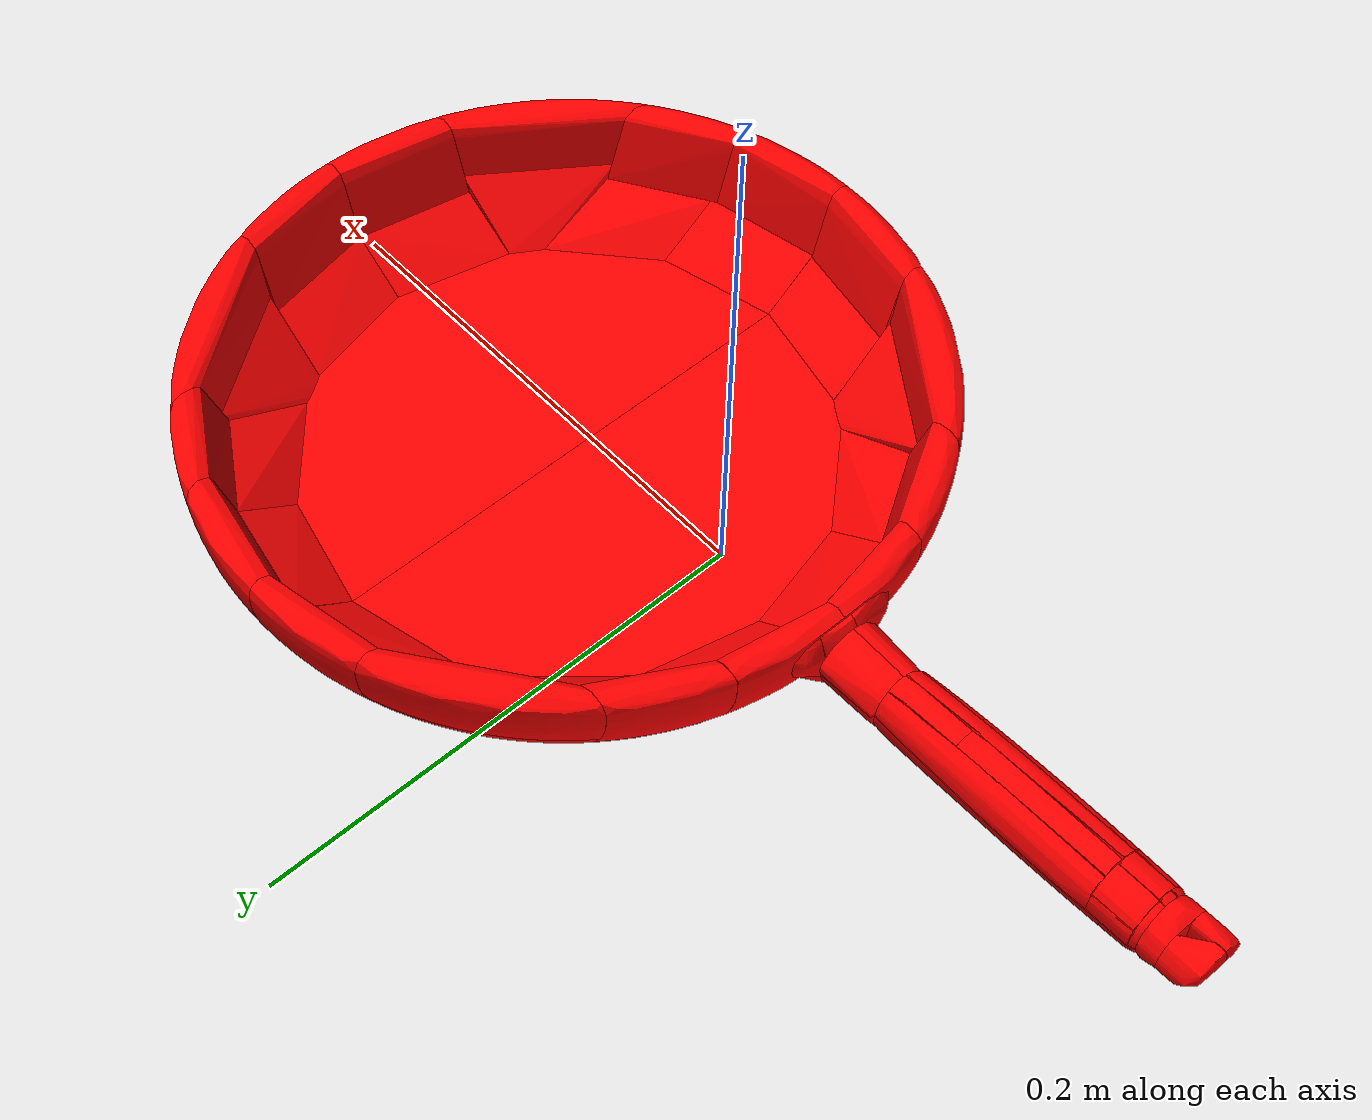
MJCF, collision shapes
<?xml version="1.0" ?>
<mujoco model="pan">
	<compiler meshdir="pan/meshes" texturedir="pan/textures" angle="radian" autolimits="true" balanceinertia="true" boundmass="0.000001" boundinertia="0.000001"/>
	<default>
		<default class="visual">
			<geom contype="0" conaffinity="0"/>
		</default>
		<default class="collision">
			<geom rgba="1.0 0.0 0.0 0.0"/>
		</default>
	</default>
	<asset>
		<mesh name="PanMetal" file="stl/PanMetal.stl" scale="1.0 1.0 1.0"/>
		<mesh name="PanMetal_001" file="stl/PanMetal_001.stl" scale="1.0 1.0 1.0"/>
		<mesh name="PanMetal_002" file="stl/PanMetal_002.stl" scale="1.0 1.0 1.0"/>
		<mesh name="PanMetal_003" file="stl/PanMetal_003.stl" scale="1.0 1.0 1.0"/>
		<mesh name="PanMetal_004" file="stl/PanMetal_004.stl" scale="1.0 1.0 1.0"/>
		<mesh name="PanMetal_005" file="stl/PanMetal_005.stl" scale="1.0 1.0 1.0"/>
		<mesh name="PanMetal_006" file="stl/PanMetal_006.stl" scale="1.0 1.0 1.0"/>
		<mesh name="PanMetal_007" file="stl/PanMetal_007.stl" scale="1.0 1.0 1.0"/>
		<mesh name="PanMetal_008" file="stl/PanMetal_008.stl" scale="1.0 1.0 1.0"/>
		<mesh name="PanMetal_009" file="stl/PanMetal_009.stl" scale="1.0 1.0 1.0"/>
		<mesh name="PanMetal_010" file="stl/PanMetal_010.stl" scale="1.0 1.0 1.0"/>
		<mesh name="PanMetal_011" file="stl/PanMetal_011.stl" scale="1.0 1.0 1.0"/>
		<mesh name="PanMetal_012" file="stl/PanMetal_012.stl" scale="1.0 1.0 1.0"/>
		<mesh name="PanMetal_013" file="stl/PanMetal_013.stl" scale="1.0 1.0 1.0"/>
		<mesh name="PanMetal_014" file="stl/PanMetal_014.stl" scale="1.0 1.0 1.0"/>
		<mesh name="PanMetal_015" file="stl/PanMetal_015.stl" scale="1.0 1.0 1.0"/>
		<mesh name="PanMetal_016" file="stl/PanMetal_016.stl" scale="1.0 1.0 1.0"/>
		<mesh name="PanMetal_017" file="stl/PanMetal_017.stl" scale="1.0 1.0 1.0"/>
		<mesh name="PanMetal_018" file="stl/PanMetal_018.stl" scale="1.0 1.0 1.0"/>
		<mesh name="PanMetal_019" file="stl/PanMetal_019.stl" scale="1.0 1.0 1.0"/>
		<mesh name="PanMetal_020" file="stl/PanMetal_020.stl" scale="1.0 1.0 1.0"/>
		<mesh name="PanMetal_021" file="stl/PanMetal_021.stl" scale="1.0 1.0 1.0"/>
		<mesh name="PanMetal_022" file="stl/PanMetal_022.stl" scale="1.0 1.0 1.0"/>
		<mesh name="PanMetal_023" file="stl/PanMetal_023.stl" scale="1.0 1.0 1.0"/>
		<mesh name="PanMetal_024" file="stl/PanMetal_024.stl" scale="1.0 1.0 1.0"/>
		<mesh name="PanMetal_025" file="stl/PanMetal_025.stl" scale="1.0 1.0 1.0"/>
		<mesh name="PanMetal_026" file="stl/PanMetal_026.stl" scale="1.0 1.0 1.0"/>
		<mesh name="PanMetal_027" file="stl/PanMetal_027.stl" scale="1.0 1.0 1.0"/>
		<mesh name="PanMetal_028" file="stl/PanMetal_028.stl" scale="1.0 1.0 1.0"/>
		<mesh name="PanMetal_029" file="stl/PanMetal_029.stl" scale="1.0 1.0 1.0"/>
		<mesh name="PanMetal_030" file="stl/PanMetal_030.stl" scale="1.0 1.0 1.0"/>
		<mesh name="PanMetal_031" file="stl/PanMetal_031.stl" scale="1.0 1.0 1.0"/>
		<mesh name="PanMetal_032" file="stl/PanMetal_032.stl" scale="1.0 1.0 1.0"/>
		<mesh name="PanMetal_033" file="stl/PanMetal_033.stl" scale="1.0 1.0 1.0"/>
		<mesh name="PanMetal_034" file="stl/PanMetal_034.stl" scale="1.0 1.0 1.0"/>
		<mesh name="HandleMetal" file="stl/HandleMetal.stl" scale="1.0 1.0 1.0"/>
		<mesh name="HandleMetal_001" file="stl/HandleMetal_001.stl" scale="1.0 1.0 1.0"/>
		<mesh name="HandleMetal_002" file="stl/HandleMetal_002.stl" scale="1.0 1.0 1.0"/>
		<mesh name="HandleMetal_003" file="stl/HandleMetal_003.stl" scale="1.0 1.0 1.0"/>
		<mesh name="HandleMetal_004" file="stl/HandleMetal_004.stl" scale="1.0 1.0 1.0"/>
		<mesh name="HandleMetal_005" file="stl/HandleMetal_005.stl" scale="1.0 1.0 1.0"/>
		<mesh name="HandleMetal_006" file="stl/HandleMetal_006.stl" scale="1.0 1.0 1.0"/>
		<mesh name="HandleMetal_007" file="stl/HandleMetal_007.stl" scale="1.0 1.0 1.0"/>
		<mesh name="HandleMetal_008" file="stl/HandleMetal_008.stl" scale="1.0 1.0 1.0"/>
		<mesh name="HandleMetal_009" file="stl/HandleMetal_009.stl" scale="1.0 1.0 1.0"/>
		<mesh name="HandleMetal_010" file="stl/HandleMetal_010.stl" scale="1.0 1.0 1.0"/>
		<mesh name="HandleMetal_011" file="stl/HandleMetal_011.stl" scale="1.0 1.0 1.0"/>
		<mesh name="HandleMetal_012" file="stl/HandleMetal_012.stl" scale="1.0 1.0 1.0"/>
		<mesh name="HandleWooden" file="obj/HandleWooden.obj" scale="1.0 1.0 1.0"/>
		<mesh name="HandleWooden_001" file="stl/HandleWooden_001.stl" scale="1.0 1.0 1.0"/>
		<mesh name="HandleWooden_002" file="stl/HandleWooden_002.stl" scale="1.0 1.0 1.0"/>
		<mesh name="HandleWooden_003" file="stl/HandleWooden_003.stl" scale="1.0 1.0 1.0"/>
		<mesh name="HandleWooden_004" file="stl/HandleWooden_004.stl" scale="1.0 1.0 1.0"/>
		<mesh name="HandleWooden_005" file="stl/HandleWooden_005.stl" scale="1.0 1.0 1.0"/>
		<mesh name="HandleWooden_006" file="stl/HandleWooden_006.stl" scale="1.0 1.0 1.0"/>
		<mesh name="HandleWooden_007" file="stl/HandleWooden_007.stl" scale="1.0 1.0 1.0"/>
		<mesh name="HandleWooden_008" file="stl/HandleWooden_008.stl" scale="1.0 1.0 1.0"/>
		<mesh name="HandleWooden_009" file="stl/HandleWooden_009.stl" scale="1.0 1.0 1.0"/>
		<mesh name="HandleWooden_010" file="stl/HandleWooden_010.stl" scale="1.0 1.0 1.0"/>
		<mesh name="HandleWooden_011" file="stl/HandleWooden_011.stl" scale="1.0 1.0 1.0"/>
		<mesh name="HandleWooden_012" file="stl/HandleWooden_012.stl" scale="1.0 1.0 1.0"/>
		<mesh name="HandleWooden_013" file="stl/HandleWooden_013.stl" scale="1.0 1.0 1.0"/>
		<mesh name="HandleWooden_014" file="stl/HandleWooden_014.stl" scale="1.0 1.0 1.0"/>
		<mesh name="HandleWooden_015" file="stl/HandleWooden_015.stl" scale="1.0 1.0 1.0"/>
		<mesh name="HandleWooden_016" file="stl/HandleWooden_016.stl" scale="1.0 1.0 1.0"/>
		<mesh name="HandleWooden_017" file="stl/HandleWooden_017.stl" scale="1.0 1.0 1.0"/>
		<mesh name="HandleWooden_018" file="stl/HandleWooden_018.stl" scale="1.0 1.0 1.0"/>
		<mesh name="HandleWooden_019" file="stl/HandleWooden_019.stl" scale="1.0 1.0 1.0"/>
		<mesh name="HandleWooden_020" file="stl/HandleWooden_020.stl" scale="1.0 1.0 1.0"/>
		<mesh name="HandleWooden_021" file="stl/HandleWooden_021.stl" scale="1.0 1.0 1.0"/>
		<mesh name="HandleWooden_022" file="stl/HandleWooden_022.stl" scale="1.0 1.0 1.0"/>
		<mesh name="HandleWooden_023" file="stl/HandleWooden_023.stl" scale="1.0 1.0 1.0"/>
		<mesh name="HandleWooden_024" file="stl/HandleWooden_024.stl" scale="1.0 1.0 1.0"/>
		<material name="M_PanMetal" rgba="0.35010001063346863 0.3345000147819519 0.2874999940395355 1.0" emission="0.0"/>
		<material name="M_HandleMetal" rgba="0.35010001063346863 0.3345000147819519 0.2874999940395355 1.0" emission="0.0"/>
		<material name="M_HandleWooden" texture="T_HandleWooden"/>
		<texture name="T_HandleWooden" type="2d" file="T_HandleWooden.png"/>
	</asset>
	<worldbody>
		<body name="pan" pos="0.0 0.0 0.0" quat="1.0 0.0 0.0 0.0">
			<body name="pan_metal" pos="0.0 0.0 0.0" quat="1.0 0.0 0.0 0.0">
				<inertial mass="2.6286439895629883" pos="0.08990475535392761 -2.732915334036079e-07 -0.006082954816520214" quat="0.9998741745948792 -2.2729412307853636e-07 0.015862658619880676 -1.6148235317814397e-06" diaginertia="0.02098214253783226 0.04000343754887581 0.05947813764214516"/>
				<geom name="PanMetal" type="mesh" pos="0.0 0.0 0.0" quat="1.0 0.0 0.0 0.0" mesh="PanMetal" material="M_PanMetal" class="visual"/>
				<geom name="PanMetal_001" type="mesh" pos="0.0 0.0 0.0" quat="1.0 0.0 0.0 0.0" mesh="PanMetal_001" class="collision"/>
				<geom name="PanMetal_002" type="mesh" pos="0.0 0.0 0.0" quat="1.0 0.0 0.0 0.0" mesh="PanMetal_002" class="collision"/>
				<geom name="PanMetal_003" type="mesh" pos="0.0 0.0 0.0" quat="1.0 0.0 0.0 0.0" mesh="PanMetal_003" class="collision"/>
				<geom name="PanMetal_004" type="mesh" pos="0.0 0.0 0.0" quat="1.0 0.0 0.0 0.0" mesh="PanMetal_004" class="collision"/>
				<geom name="PanMetal_005" type="mesh" pos="0.0 0.0 0.0" quat="1.0 0.0 0.0 0.0" mesh="PanMetal_005" class="collision"/>
				<geom name="PanMetal_006" type="mesh" pos="0.0 0.0 0.0" quat="1.0 0.0 0.0 0.0" mesh="PanMetal_006" class="collision"/>
				<geom name="PanMetal_007" type="mesh" pos="0.0 0.0 0.0" quat="1.0 0.0 0.0 0.0" mesh="PanMetal_007" class="collision"/>
				<geom name="PanMetal_008" type="mesh" pos="0.0 0.0 0.0" quat="1.0 0.0 0.0 0.0" mesh="PanMetal_008" class="collision"/>
				<geom name="PanMetal_009" type="mesh" pos="0.0 0.0 0.0" quat="1.0 0.0 0.0 0.0" mesh="PanMetal_009" class="collision"/>
				<geom name="PanMetal_010" type="mesh" pos="0.0 0.0 0.0" quat="1.0 0.0 0.0 0.0" mesh="PanMetal_010" class="collision"/>
				<geom name="PanMetal_011" type="mesh" pos="0.0 0.0 0.0" quat="1.0 0.0 0.0 0.0" mesh="PanMetal_011" class="collision"/>
				<geom name="PanMetal_012" type="mesh" pos="0.0 0.0 0.0" quat="1.0 0.0 0.0 0.0" mesh="PanMetal_012" class="collision"/>
				<geom name="PanMetal_013" type="mesh" pos="0.0 0.0 0.0" quat="1.0 0.0 0.0 0.0" mesh="PanMetal_013" class="collision"/>
				<geom name="PanMetal_014" type="mesh" pos="0.0 0.0 0.0" quat="1.0 0.0 0.0 0.0" mesh="PanMetal_014" class="collision"/>
				<geom name="PanMetal_015" type="mesh" pos="0.0 0.0 0.0" quat="1.0 0.0 0.0 0.0" mesh="PanMetal_015" class="collision"/>
				<geom name="PanMetal_016" type="mesh" pos="0.0 0.0 0.0" quat="1.0 0.0 0.0 0.0" mesh="PanMetal_016" class="collision"/>
				<geom name="PanMetal_017" type="mesh" pos="0.0 0.0 0.0" quat="1.0 0.0 0.0 0.0" mesh="PanMetal_017" class="collision"/>
				<geom name="PanMetal_018" type="mesh" pos="0.0 0.0 0.0" quat="1.0 0.0 0.0 0.0" mesh="PanMetal_018" class="collision"/>
				<geom name="PanMetal_019" type="mesh" pos="0.0 0.0 0.0" quat="1.0 0.0 0.0 0.0" mesh="PanMetal_019" class="collision"/>
				<geom name="PanMetal_020" type="mesh" pos="0.0 0.0 0.0" quat="1.0 0.0 0.0 0.0" mesh="PanMetal_020" class="collision"/>
				<geom name="PanMetal_021" type="mesh" pos="0.0 0.0 0.0" quat="1.0 0.0 0.0 0.0" mesh="PanMetal_021" class="collision"/>
				<geom name="PanMetal_022" type="mesh" pos="0.0 0.0 0.0" quat="1.0 0.0 0.0 0.0" mesh="PanMetal_022" class="collision"/>
				<geom name="PanMetal_023" type="mesh" pos="0.0 0.0 0.0" quat="1.0 0.0 0.0 0.0" mesh="PanMetal_023" class="collision"/>
				<geom name="PanMetal_024" type="mesh" pos="0.0 0.0 0.0" quat="1.0 0.0 0.0 0.0" mesh="PanMetal_024" class="collision"/>
				<geom name="PanMetal_025" type="mesh" pos="0.0 0.0 0.0" quat="1.0 0.0 0.0 0.0" mesh="PanMetal_025" class="collision"/>
				<geom name="PanMetal_026" type="mesh" pos="0.0 0.0 0.0" quat="1.0 0.0 0.0 0.0" mesh="PanMetal_026" class="collision"/>
				<geom name="PanMetal_027" type="mesh" pos="0.0 0.0 0.0" quat="1.0 0.0 0.0 0.0" mesh="PanMetal_027" class="collision"/>
				<geom name="PanMetal_028" type="mesh" pos="0.0 0.0 0.0" quat="1.0 0.0 0.0 0.0" mesh="PanMetal_028" class="collision"/>
				<geom name="PanMetal_029" type="mesh" pos="0.0 0.0 0.0" quat="1.0 0.0 0.0 0.0" mesh="PanMetal_029" class="collision"/>
				<geom name="PanMetal_030" type="mesh" pos="0.0 0.0 0.0" quat="1.0 0.0 0.0 0.0" mesh="PanMetal_030" class="collision"/>
				<geom name="PanMetal_031" type="mesh" pos="0.0 0.0 0.0" quat="1.0 0.0 0.0 0.0" mesh="PanMetal_031" class="collision"/>
				<geom name="PanMetal_032" type="mesh" pos="0.0 0.0 0.0" quat="1.0 0.0 0.0 0.0" mesh="PanMetal_032" class="collision"/>
				<geom name="PanMetal_033" type="mesh" pos="0.0 0.0 0.0" quat="1.0 0.0 0.0 0.0" mesh="PanMetal_033" class="collision"/>
				<geom name="PanMetal_034" type="mesh" pos="0.0 0.0 0.0" quat="1.0 0.0 0.0 0.0" mesh="PanMetal_034" class="collision"/>
			</body>
			<body name="handle_wooden" pos="0.0 0.0 0.0" quat="1.0 0.0 0.0 0.0">
				<inertial mass="0.5336440801620483" pos="-0.13276457786560059 0.000123787292977795 0.00931735523045063" quat="0.712058424949646 0.701295793056488 0.023928305134177208 -0.024174852296710014" diaginertia="3.8637517718598247e-05 0.010447471402585506 0.010448549874126911"/>
				<geom name="HandleWooden" type="mesh" pos="0.0 0.0 0.0" quat="1.0 0.0 0.0 0.0" mesh="HandleWooden" material="M_HandleWooden" class="visual"/>
				<geom name="HandleWooden_001" type="mesh" pos="0.0 0.0 0.0" quat="1.0 0.0 0.0 0.0" mesh="HandleWooden_001" class="collision"/>
				<geom name="HandleWooden_002" type="mesh" pos="0.0 0.0 0.0" quat="1.0 0.0 0.0 0.0" mesh="HandleWooden_002" class="collision"/>
				<geom name="HandleWooden_003" type="mesh" pos="0.0 0.0 0.0" quat="1.0 0.0 0.0 0.0" mesh="HandleWooden_003" class="collision"/>
				<geom name="HandleWooden_004" type="mesh" pos="0.0 0.0 0.0" quat="1.0 0.0 0.0 0.0" mesh="HandleWooden_004" class="collision"/>
				<geom name="HandleWooden_005" type="mesh" pos="0.0 0.0 0.0" quat="1.0 0.0 0.0 0.0" mesh="HandleWooden_005" class="collision"/>
				<geom name="HandleWooden_006" type="mesh" pos="0.0 0.0 0.0" quat="1.0 0.0 0.0 0.0" mesh="HandleWooden_006" class="collision"/>
				<geom name="HandleWooden_007" type="mesh" pos="0.0 0.0 0.0" quat="1.0 0.0 0.0 0.0" mesh="HandleWooden_007" class="collision"/>
				<geom name="HandleWooden_008" type="mesh" pos="0.0 0.0 0.0" quat="1.0 0.0 0.0 0.0" mesh="HandleWooden_008" class="collision"/>
				<geom name="HandleWooden_009" type="mesh" pos="0.0 0.0 0.0" quat="1.0 0.0 0.0 0.0" mesh="HandleWooden_009" class="collision"/>
				<geom name="HandleWooden_010" type="mesh" pos="0.0 0.0 0.0" quat="1.0 0.0 0.0 0.0" mesh="HandleWooden_010" class="collision"/>
				<geom name="HandleWooden_011" type="mesh" pos="0.0 0.0 0.0" quat="1.0 0.0 0.0 0.0" mesh="HandleWooden_011" class="collision"/>
				<geom name="HandleWooden_012" type="mesh" pos="0.0 0.0 0.0" quat="1.0 0.0 0.0 0.0" mesh="HandleWooden_012" class="collision"/>
				<geom name="HandleWooden_013" type="mesh" pos="0.0 0.0 0.0" quat="1.0 0.0 0.0 0.0" mesh="HandleWooden_013" class="collision"/>
				<geom name="HandleWooden_014" type="mesh" pos="0.0 0.0 0.0" quat="1.0 0.0 0.0 0.0" mesh="HandleWooden_014" class="collision"/>
				<geom name="HandleWooden_015" type="mesh" pos="0.0 0.0 0.0" quat="1.0 0.0 0.0 0.0" mesh="HandleWooden_015" class="collision"/>
				<geom name="HandleWooden_016" type="mesh" pos="0.0 0.0 0.0" quat="1.0 0.0 0.0 0.0" mesh="HandleWooden_016" class="collision"/>
				<geom name="HandleWooden_017" type="mesh" pos="0.0 0.0 0.0" quat="1.0 0.0 0.0 0.0" mesh="HandleWooden_017" class="collision"/>
				<geom name="HandleWooden_018" type="mesh" pos="0.0 0.0 0.0" quat="1.0 0.0 0.0 0.0" mesh="HandleWooden_018" class="collision"/>
				<geom name="HandleWooden_019" type="mesh" pos="0.0 0.0 0.0" quat="1.0 0.0 0.0 0.0" mesh="HandleWooden_019" class="collision"/>
				<geom name="HandleWooden_020" type="mesh" pos="0.0 0.0 0.0" quat="1.0 0.0 0.0 0.0" mesh="HandleWooden_020" class="collision"/>
				<geom name="HandleWooden_021" type="mesh" pos="0.0 0.0 0.0" quat="1.0 0.0 0.0 0.0" mesh="HandleWooden_021" class="collision"/>
				<geom name="HandleWooden_022" type="mesh" pos="0.0 0.0 0.0" quat="1.0 0.0 0.0 0.0" mesh="HandleWooden_022" class="collision"/>
				<geom name="HandleWooden_023" type="mesh" pos="0.0 0.0 0.0" quat="1.0 0.0 0.0 0.0" mesh="HandleWooden_023" class="collision"/>
				<geom name="HandleWooden_024" type="mesh" pos="0.0 0.0 0.0" quat="1.0 0.0 0.0 0.0" mesh="HandleWooden_024" class="collision"/>
			</body>
			<body name="handle_metal" pos="0.0 0.0 0.0" quat="1.0 0.0 0.0 0.0">
				<inertial mass="0.09857194870710373" pos="-0.09976198524236679 0.00013171879982110113 0.009249822236597538" quat="0.9992324113845825 0.002873531775549054 0.03906231001019478 -0.0006392072536982596" diaginertia="1.0279828529746737e-05 0.0014953159261494875 0.0014964917208999395"/>
				<geom name="HandleMetal" type="mesh" pos="0.0 0.0 0.0" quat="1.0 0.0 0.0 0.0" mesh="HandleMetal" material="M_HandleMetal" class="visual"/>
				<geom name="HandleMetal_001" type="mesh" pos="0.0 0.0 0.0" quat="1.0 0.0 0.0 0.0" mesh="HandleMetal_001" class="collision"/>
				<geom name="HandleMetal_002" type="mesh" pos="0.0 0.0 0.0" quat="1.0 0.0 0.0 0.0" mesh="HandleMetal_002" class="collision"/>
				<geom name="HandleMetal_003" type="mesh" pos="0.0 0.0 0.0" quat="1.0 0.0 0.0 0.0" mesh="HandleMetal_003" class="collision"/>
				<geom name="HandleMetal_004" type="mesh" pos="0.0 0.0 0.0" quat="1.0 0.0 0.0 0.0" mesh="HandleMetal_004" class="collision"/>
				<geom name="HandleMetal_005" type="mesh" pos="0.0 0.0 0.0" quat="1.0 0.0 0.0 0.0" mesh="HandleMetal_005" class="collision"/>
				<geom name="HandleMetal_006" type="mesh" pos="0.0 0.0 0.0" quat="1.0 0.0 0.0 0.0" mesh="HandleMetal_006" class="collision"/>
				<geom name="HandleMetal_007" type="mesh" pos="0.0 0.0 0.0" quat="1.0 0.0 0.0 0.0" mesh="HandleMetal_007" class="collision"/>
				<geom name="HandleMetal_008" type="mesh" pos="0.0 0.0 0.0" quat="1.0 0.0 0.0 0.0" mesh="HandleMetal_008" class="collision"/>
				<geom name="HandleMetal_009" type="mesh" pos="0.0 0.0 0.0" quat="1.0 0.0 0.0 0.0" mesh="HandleMetal_009" class="collision"/>
				<geom name="HandleMetal_010" type="mesh" pos="0.0 0.0 0.0" quat="1.0 0.0 0.0 0.0" mesh="HandleMetal_010" class="collision"/>
				<geom name="HandleMetal_011" type="mesh" pos="0.0 0.0 0.0" quat="1.0 0.0 0.0 0.0" mesh="HandleMetal_011" class="collision"/>
				<geom name="HandleMetal_012" type="mesh" pos="0.0 0.0 0.0" quat="1.0 0.0 0.0 0.0" mesh="HandleMetal_012" class="collision"/>
			</body>
		</body>
	</worldbody>
	<equality/>
</mujoco>
